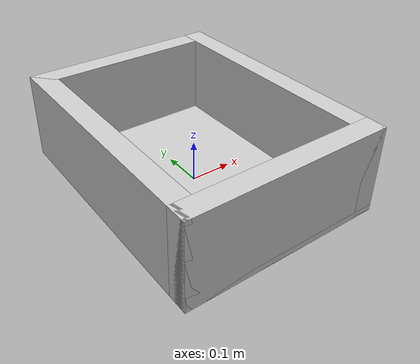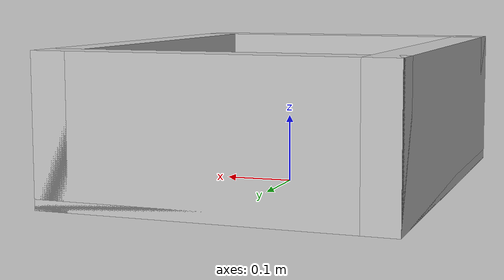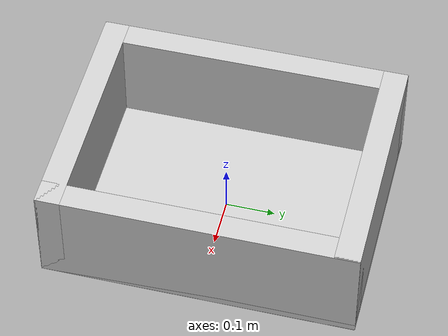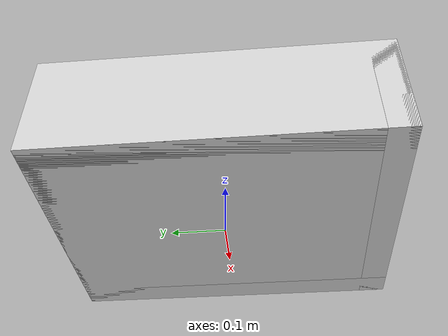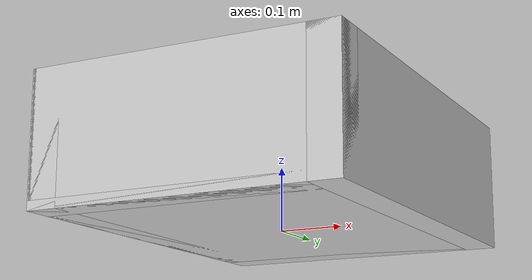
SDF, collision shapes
<?xml version="1.0"?>
<sdf version="1.7">
  <model name="bin_model">
    <!--
    Axes:
      +X - Pointing towards front (slope)
      +Y - Pointing to left side
      +Z - Up
    Origin:
      (0, 0, 0) at the center bottom of the bin
    -->
    <link name="bin_base">
      <inertial>
        <mass>18.70</mass>
        <inertia>
          <ixx>0.79</ixx>
          <ixy>0</ixy>
          <ixz>0</ixz>
          <iyy>0.53</iyy>
          <iyz>0</iyz>
          <izz>1.2</izz>
        </inertia>
      </inertial>
      <visual name="visual">
        <pose>0 0 0 0 0 1.570796</pose>
        <geometry>
        <mesh>
        <uri>bin.obj</uri>
        </mesh>
        </geometry>
        <material>
          <diffuse>0.8 0.8 0.8 1</diffuse>
        </material>
      </visual>
      <collision name="front">
        <pose>0.22 0 0.105 0 0 0</pose>
        <geometry>
          <box>
            <size>0.05 0.63 0.21</size>
          </box>
        </geometry>
      </collision>
      <collision name="back">
        <pose>-0.22 0 0.105 0 0 0</pose>
        <geometry>
          <box>
            <size>0.05 0.63 0.21</size>
          </box>
        </geometry>
      </collision>
      <collision name="left">
        <pose>0 0.29 0.105 0 0 0</pose>
        <geometry>
          <box>
            <size>0.49 0.05 0.21</size>
          </box>
        </geometry>
      </collision>
      <collision name="right">
        <pose>0 -0.29 0.105 0 0 0</pose>
        <geometry>
          <box>
            <size>0.49 0.05 0.21</size>
          </box>
        </geometry>
      </collision>
      <collision name="bottom">
        <pose>0.0 0.0 0.0075 0 0 0</pose>
        <geometry>
          <box>
            <size>0.49 0.63 0.015</size>
          </box>
        </geometry>
      </collision>
    </link>
    <frame name="bin_front_top_center">
      <pose relative_to="bin_base">0.22 0 0.21 0 0 0</pose>
    </frame>
  </model>
</sdf>
